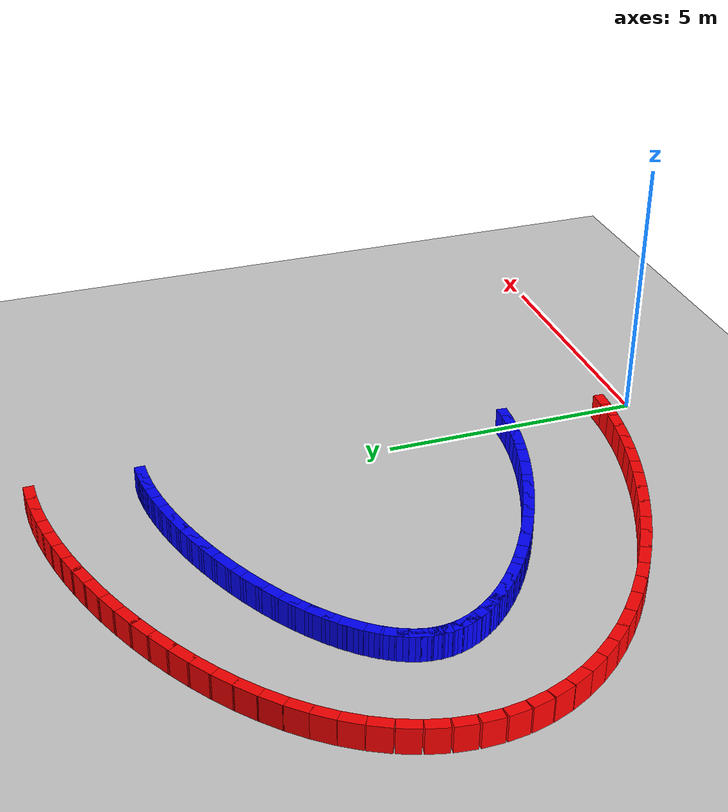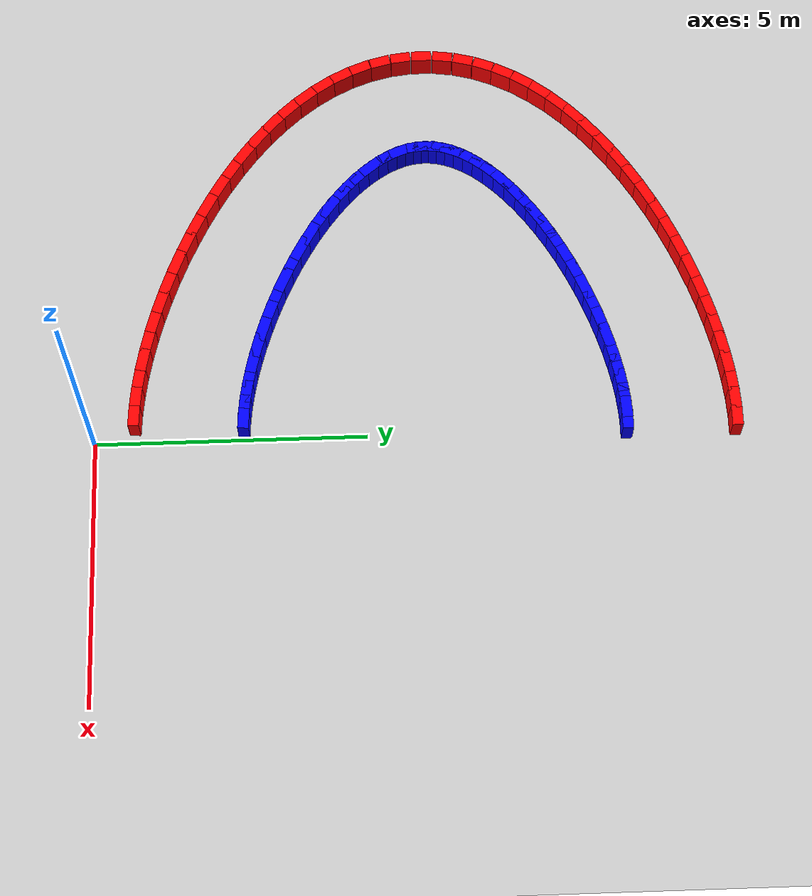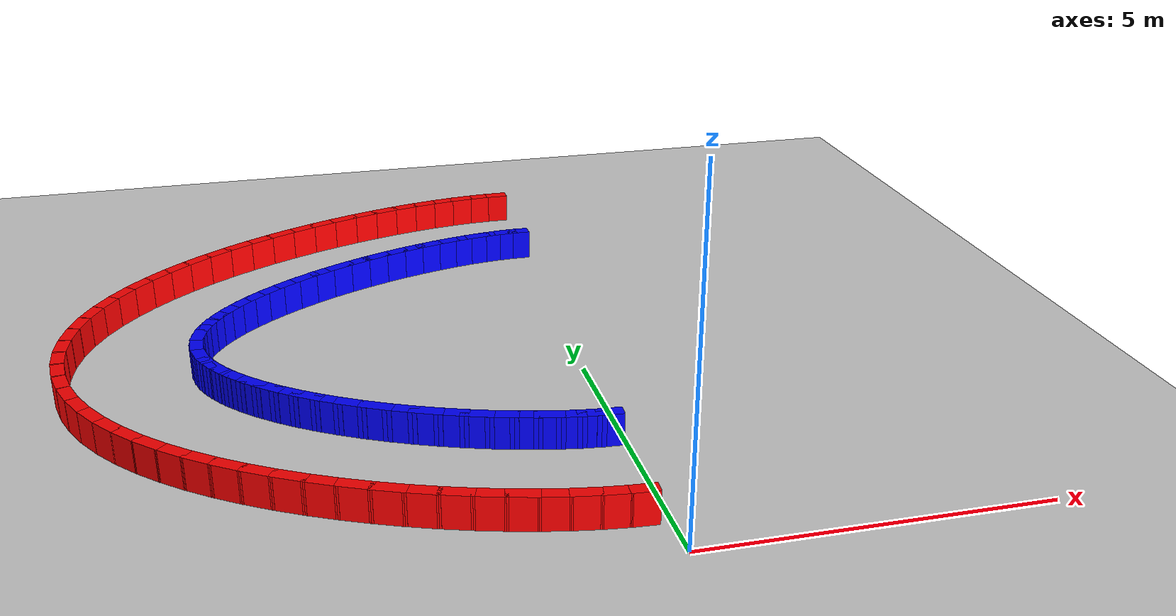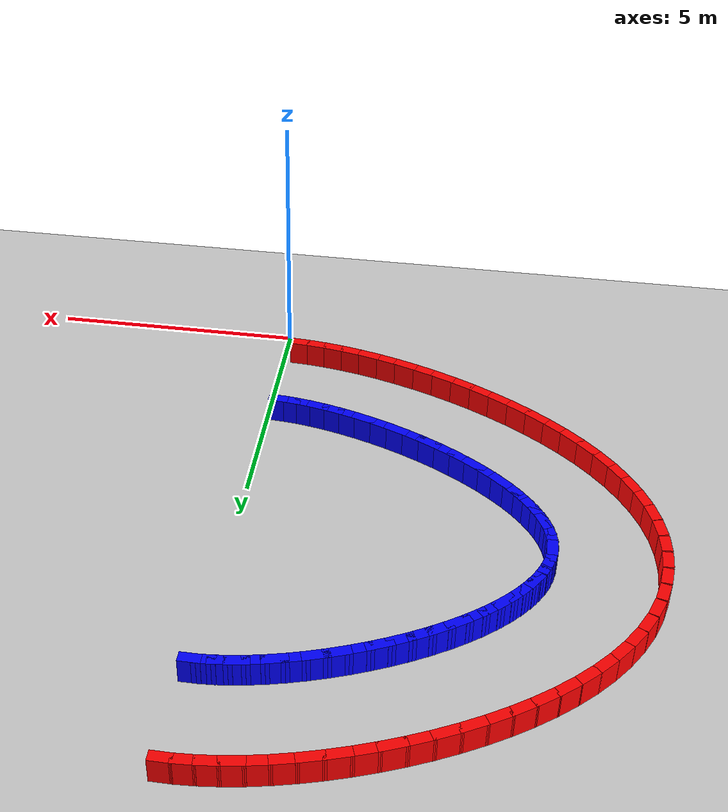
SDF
<sdf version="1.9">
 <world name="kidney_track">
  <model name="ground_plane">
   <static>true</static>
   <link name="link">
    <collision name="collision">
     <geometry><plane><normal>0 0 1</normal><size>100 100</size></plane></geometry>
    </collision>
    <visual name="visual">
     <geometry><plane><normal>0 0 1</normal><size>100 100</size></plane></geometry>
     <material><ambient>0.8 0.8 0.8 1</ambient><diffuse>0.8 0.8 0.8 1</diffuse></material>
    </visual>
   </link>
  </model>
  <model name="track">
   <static>true</static>
   <link name="outer_25">
    <pose>0.0000 11.7500 0.25 0 0 3.1416</pose>
    <collision name="col"><geometry><box><size>0.3916 0.2 0.5</size></box></geometry></collision>
    <visual name="vis">
     <geometry><box><size>0.3916 0.2 0.5</size></box></geometry>
     <material><ambient>1 0 0 1</ambient></material>
    </visual>
   </link>
   <link name="inner_25">
    <pose>0.0000 9.7500 0.25 0 0 3.1416</pose>
    <collision name="col"><geometry><box><size>0.3916 0.2 0.5</size></box></geometry></collision>
    <visual name="vis">
     <geometry><box><size>0.3916 0.2 0.5</size></box></geometry>
     <material><ambient>0 0 1 1</ambient></material>
    </visual>
   </link>
   <link name="outer_26">
    <pose>-0.3505 11.7394 0.25 0 0 -3.0825</pose>
    <collision name="col"><geometry><box><size>0.4091 0.2 0.5</size></box></geometry></collision>
    <visual name="vis">
     <geometry><box><size>0.4091 0.2 0.5</size></box></geometry>
     <material><ambient>1 0 0 1</ambient></material>
    </visual>
   </link>
   <link name="inner_26">
    <pose>-0.2323 9.7429 0.25 0 0 -3.0825</pose>
    <collision name="col"><geometry><box><size>0.4091 0.2 0.5</size></box></geometry></collision>
    <visual name="vis">
     <geometry><box><size>0.4091 0.2 0.5</size></box></geometry>
     <material><ambient>0 0 1 1</ambient></material>
    </visual>
   </link>
   <link name="outer_27">
    <pose>-0.7109 11.7083 0.25 0 0 -3.0298</pose>
    <collision name="col"><geometry><box><size>0.4259 0.2 0.5</size></box></geometry></collision>
    <visual name="vis">
     <geometry><box><size>0.4259 0.2 0.5</size></box></geometry>
     <material><ambient>1 0 0 1</ambient></material>
    </visual>
   </link>
   <link name="inner_27">
    <pose>-0.4878 9.7208 0.25 0 0 -3.0298</pose>
    <collision name="col"><geometry><box><size>0.4259 0.2 0.5</size></box></geometry></collision>
    <visual name="vis">
     <geometry><box><size>0.4259 0.2 0.5</size></box></geometry>
     <material><ambient>0 0 1 1</ambient></material>
    </visual>
   </link>
   <link name="outer_28">
    <pose>-1.0808 11.6576 0.25 0 0 -2.9823</pose>
    <collision name="col"><geometry><box><size>0.4417 0.2 0.5</size></box></geometry></collision>
    <visual name="vis">
     <geometry><box><size>0.4417 0.2 0.5</size></box></geometry>
     <material><ambient>1 0 0 1</ambient></material>
    </visual>
   </link>
   <link name="inner_28">
    <pose>-0.7636 9.6830 0.25 0 0 -2.9823</pose>
    <collision name="col"><geometry><box><size>0.4417 0.2 0.5</size></box></geometry></collision>
    <visual name="vis">
     <geometry><box><size>0.4417 0.2 0.5</size></box></geometry>
     <material><ambient>0 0 1 1</ambient></material>
    </visual>
   </link>
   <link name="outer_29">
    <pose>-1.4597 11.5881 0.25 0 0 -2.9388</pose>
    <collision name="col"><geometry><box><size>0.4560 0.2 0.5</size></box></geometry></collision>
    <visual name="vis">
     <geometry><box><size>0.4560 0.2 0.5</size></box></geometry>
     <material><ambient>1 0 0 1</ambient></material>
    </visual>
   </link>
   <link name="inner_29">
    <pose>-1.0569 9.6291 0.25 0 0 -2.9388</pose>
    <collision name="col"><geometry><box><size>0.4560 0.2 0.5</size></box></geometry></collision>
    <visual name="vis">
     <geometry><box><size>0.4560 0.2 0.5</size></box></geometry>
     <material><ambient>0 0 1 1</ambient></material>
    </visual>
   </link>
   <link name="outer_30">
    <pose>-1.8463 11.5003 0.25 0 0 -2.8983</pose>
    <collision name="col"><geometry><box><size>0.4687 0.2 0.5</size></box></geometry></collision>
    <visual name="vis">
     <geometry><box><size>0.4687 0.2 0.5</size></box></geometry>
     <material><ambient>1 0 0 1</ambient></material>
    </visual>
   </link>
   <link name="inner_30">
    <pose>-1.3645 9.5592 0.25 0 0 -2.8983</pose>
    <collision name="col"><geometry><box><size>0.4687 0.2 0.5</size></box></geometry></collision>
    <visual name="vis">
     <geometry><box><size>0.4687 0.2 0.5</size></box></geometry>
     <material><ambient>0 0 1 1</ambient></material>
    </visual>
   </link>
   <link name="outer_31">
    <pose>-2.2395 11.3946 0.25 0 0 -2.8599</pose>
    <collision name="col"><geometry><box><size>0.4794 0.2 0.5</size></box></geometry></collision>
    <visual name="vis">
     <geometry><box><size>0.4794 0.2 0.5</size></box></geometry>
     <material><ambient>1 0 0 1</ambient></material>
    </visual>
   </link>
   <link name="inner_31">
    <pose>-1.6835 9.4734 0.25 0 0 -2.8599</pose>
    <collision name="col"><geometry><box><size>0.4794 0.2 0.5</size></box></geometry></collision>
    <visual name="vis">
     <geometry><box><size>0.4794 0.2 0.5</size></box></geometry>
     <material><ambient>0 0 1 1</ambient></material>
    </visual>
   </link>
   <link name="outer_32">
    <pose>-2.6373 11.2713 0.25 0 0 -2.8228</pose>
    <collision name="col"><geometry><box><size>0.4880 0.2 0.5</size></box></geometry></collision>
    <visual name="vis">
     <geometry><box><size>0.4880 0.2 0.5</size></box></geometry>
     <material><ambient>1 0 0 1</ambient></material>
    </visual>
   </link>
   <link name="inner_32">
    <pose>-2.0105 9.3721 0.25 0 0 -2.8228</pose>
    <collision name="col"><geometry><box><size>0.4880 0.2 0.5</size></box></geometry></collision>
    <visual name="vis">
     <geometry><box><size>0.4880 0.2 0.5</size></box></geometry>
     <material><ambient>0 0 1 1</ambient></material>
    </visual>
   </link>
   <link name="outer_33">
    <pose>-3.0379 11.1309 0.25 0 0 -2.7863</pose>
    <collision name="col"><geometry><box><size>0.4943 0.2 0.5</size></box></geometry></collision>
    <visual name="vis">
     <geometry><box><size>0.4943 0.2 0.5</size></box></geometry>
     <material><ambient>1 0 0 1</ambient></material>
    </visual>
   </link>
   <link name="inner_33">
    <pose>-2.3422 9.2558 0.25 0 0 -2.7863</pose>
    <collision name="col"><geometry><box><size>0.4943 0.2 0.5</size></box></geometry></collision>
    <visual name="vis">
     <geometry><box><size>0.4943 0.2 0.5</size></box></geometry>
     <material><ambient>0 0 1 1</ambient></material>
    </visual>
   </link>
   <link name="outer_34">
    <pose>-3.4391 10.9737 0.25 0 0 -2.7497</pose>
    <collision name="col"><geometry><box><size>0.4982 0.2 0.5</size></box></geometry></collision>
    <visual name="vis">
     <geometry><box><size>0.4982 0.2 0.5</size></box></geometry>
     <material><ambient>1 0 0 1</ambient></material>
    </visual>
   </link>
   <link name="inner_34">
    <pose>-2.6753 9.1253 0.25 0 0 -2.7497</pose>
    <collision name="col"><geometry><box><size>0.4982 0.2 0.5</size></box></geometry></collision>
    <visual name="vis">
     <geometry><box><size>0.4982 0.2 0.5</size></box></geometry>
     <material><ambient>0 0 1 1</ambient></material>
    </visual>
   </link>
   <link name="outer_35">
    <pose>-3.8385 10.7999 0.25 0 0 -2.7124</pose>
    <collision name="col"><geometry><box><size>0.4997 0.2 0.5</size></box></geometry></collision>
    <visual name="vis">
     <geometry><box><size>0.4997 0.2 0.5</size></box></geometry>
     <material><ambient>1 0 0 1</ambient></material>
    </visual>
   </link>
   <link name="inner_35">
    <pose>-3.0063 8.9813 0.25 0 0 -2.7124</pose>
    <collision name="col"><geometry><box><size>0.4997 0.2 0.5</size></box></geometry></collision>
    <visual name="vis">
     <geometry><box><size>0.4997 0.2 0.5</size></box></geometry>
     <material><ambient>0 0 1 1</ambient></material>
    </visual>
   </link>
   <link name="outer_36">
    <pose>-4.2336 10.6099 0.25 0 0 -2.6738</pose>
    <collision name="col"><geometry><box><size>0.4988 0.2 0.5</size></box></geometry></collision>
    <visual name="vis">
     <geometry><box><size>0.4988 0.2 0.5</size></box></geometry>
     <material><ambient>1 0 0 1</ambient></material>
    </visual>
   </link>
   <link name="inner_36">
    <pose>-3.3317 8.8248 0.25 0 0 -2.6738</pose>
    <collision name="col"><geometry><box><size>0.4988 0.2 0.5</size></box></geometry></collision>
    <visual name="vis">
     <geometry><box><size>0.4988 0.2 0.5</size></box></geometry>
     <material><ambient>0 0 1 1</ambient></material>
    </visual>
   </link>
   <link name="outer_37">
    <pose>-4.6217 10.4038 0.25 0 0 -2.6330</pose>
    <collision name="col"><geometry><box><size>0.4954 0.2 0.5</size></box></geometry></collision>
    <visual name="vis">
     <geometry><box><size>0.4954 0.2 0.5</size></box></geometry>
     <material><ambient>1 0 0 1</ambient></material>
    </visual>
   </link>
   <link name="inner_37">
    <pose>-3.6479 8.6569 0.25 0 0 -2.6330</pose>
    <collision name="col"><geometry><box><size>0.4954 0.2 0.5</size></box></geometry></collision>
    <visual name="vis">
     <geometry><box><size>0.4954 0.2 0.5</size></box></geometry>
     <material><ambient>0 0 1 1</ambient></material>
    </visual>
   </link>
   <link name="outer_38">
    <pose>-5.0004 10.1819 0.25 0 0 -2.5895</pose>
    <collision name="col"><geometry><box><size>0.4898 0.2 0.5</size></box></geometry></collision>
    <visual name="vis">
     <geometry><box><size>0.4898 0.2 0.5</size></box></geometry>
     <material><ambient>1 0 0 1</ambient></material>
    </visual>
   </link>
   <link name="inner_38">
    <pose>-3.9516 8.4790 0.25 0 0 -2.5895</pose>
    <collision name="col"><geometry><box><size>0.4898 0.2 0.5</size></box></geometry></collision>
    <visual name="vis">
     <geometry><box><size>0.4898 0.2 0.5</size></box></geometry>
     <material><ambient>0 0 1 1</ambient></material>
    </visual>
   </link>
   <link name="outer_39">
    <pose>-5.3670 9.9443 0.25 0 0 -2.5425</pose>
    <collision name="col"><geometry><box><size>0.4822 0.2 0.5</size></box></geometry></collision>
    <visual name="vis">
     <geometry><box><size>0.4822 0.2 0.5</size></box></geometry>
     <material><ambient>1 0 0 1</ambient></material>
    </visual>
   </link>
   <link name="inner_39">
    <pose>-4.2393 8.2925 0.25 0 0 -2.5425</pose>
    <collision name="col"><geometry><box><size>0.4822 0.2 0.5</size></box></geometry></collision>
    <visual name="vis">
     <geometry><box><size>0.4822 0.2 0.5</size></box></geometry>
     <material><ambient>0 0 1 1</ambient></material>
    </visual>
   </link>
   <link name="outer_40">
    <pose>-5.7187 9.6909 0.25 0 0 -2.4912</pose>
    <collision name="col"><geometry><box><size>0.4727 0.2 0.5</size></box></geometry></collision>
    <visual name="vis">
     <geometry><box><size>0.4727 0.2 0.5</size></box></geometry>
     <material><ambient>1 0 0 1</ambient></material>
    </visual>
   </link>
   <link name="inner_40">
    <pose>-4.5077 8.0992 0.25 0 0 -2.4912</pose>
    <collision name="col"><geometry><box><size>0.4727 0.2 0.5</size></box></geometry></collision>
    <visual name="vis">
     <geometry><box><size>0.4727 0.2 0.5</size></box></geometry>
     <material><ambient>0 0 1 1</ambient></material>
    </visual>
   </link>
   <link name="outer_41">
    <pose>-6.0531 9.4215 0.25 0 0 -2.4346</pose>
    <collision name="col"><geometry><box><size>0.4618 0.2 0.5</size></box></geometry></collision>
    <visual name="vis">
     <geometry><box><size>0.4618 0.2 0.5</size></box></geometry>
     <material><ambient>1 0 0 1</ambient></material>
    </visual>
   </link>
   <link name="inner_41">
    <pose>-4.7539 7.9009 0.25 0 0 -2.4346</pose>
    <collision name="col"><geometry><box><size>0.4618 0.2 0.5</size></box></geometry></collision>
    <visual name="vis">
     <geometry><box><size>0.4618 0.2 0.5</size></box></geometry>
     <material><ambient>0 0 1 1</ambient></material>
    </visual>
   </link>
   <link name="outer_42">
    <pose>-6.3672 9.1359 0.25 0 0 -2.3717</pose>
    <collision name="col"><geometry><box><size>0.4497 0.2 0.5</size></box></geometry></collision>
    <visual name="vis">
     <geometry><box><size>0.4497 0.2 0.5</size></box></geometry>
     <material><ambient>1 0 0 1</ambient></material>
    </visual>
   </link>
   <link name="inner_42">
    <pose>-4.9751 7.6999 0.25 0 0 -2.3717</pose>
    <collision name="col"><geometry><box><size>0.4497 0.2 0.5</size></box></geometry></collision>
    <visual name="vis">
     <geometry><box><size>0.4497 0.2 0.5</size></box></geometry>
     <material><ambient>0 0 1 1</ambient></material>
    </visual>
   </link>
   <link name="outer_43">
    <pose>-6.6585 8.8335 0.25 0 0 -2.3016</pose>
    <collision name="col"><geometry><box><size>0.4371 0.2 0.5</size></box></geometry></collision>
    <visual name="vis">
     <geometry><box><size>0.4371 0.2 0.5</size></box></geometry>
     <material><ambient>1 0 0 1</ambient></material>
    </visual>
   </link>
   <link name="inner_43">
    <pose>-5.1692 7.4986 0.25 0 0 -2.3016</pose>
    <collision name="col"><geometry><box><size>0.4371 0.2 0.5</size></box></geometry></collision>
    <visual name="vis">
     <geometry><box><size>0.4371 0.2 0.5</size></box></geometry>
     <material><ambient>0 0 1 1</ambient></material>
    </visual>
   </link>
   <link name="outer_44">
    <pose>-6.9237 8.5137 0.25 0 0 -2.2232</pose>
    <collision name="col"><geometry><box><size>0.4245 0.2 0.5</size></box></geometry></collision>
    <visual name="vis">
     <geometry><box><size>0.4245 0.2 0.5</size></box></geometry>
     <material><ambient>1 0 0 1</ambient></material>
    </visual>
   </link>
   <link name="inner_44">
    <pose>-5.3345 7.2994 0.25 0 0 -2.2232</pose>
    <collision name="col"><geometry><box><size>0.4245 0.2 0.5</size></box></geometry></collision>
    <visual name="vis">
     <geometry><box><size>0.4245 0.2 0.5</size></box></geometry>
     <material><ambient>0 0 1 1</ambient></material>
    </visual>
   </link>
   <link name="outer_45">
    <pose>-7.1595 8.1760 0.25 0 0 -2.1358</pose>
    <collision name="col"><geometry><box><size>0.4124 0.2 0.5</size></box></geometry></collision>
    <visual name="vis">
     <geometry><box><size>0.4124 0.2 0.5</size></box></geometry>
     <material><ambient>1 0 0 1</ambient></material>
    </visual>
   </link>
   <link name="inner_45">
    <pose>-5.4703 7.1052 0.25 0 0 -2.1358</pose>
    <collision name="col"><geometry><box><size>0.4124 0.2 0.5</size></box></geometry></collision>
    <visual name="vis">
     <geometry><box><size>0.4124 0.2 0.5</size></box></geometry>
     <material><ambient>0 0 1 1</ambient></material>
    </visual>
   </link>
   <link name="outer_46">
    <pose>-7.3619 7.8202 0.25 0 0 -2.0388</pose>
    <collision name="col"><geometry><box><size>0.4016 0.2 0.5</size></box></geometry></collision>
    <visual name="vis">
     <geometry><box><size>0.4016 0.2 0.5</size></box></geometry>
     <material><ambient>1 0 0 1</ambient></material>
    </visual>
   </link>
   <link name="inner_46">
    <pose>-5.5770 6.9180 0.25 0 0 -2.0388</pose>
    <collision name="col"><geometry><box><size>0.4016 0.2 0.5</size></box></geometry></collision>
    <visual name="vis">
     <geometry><box><size>0.4016 0.2 0.5</size></box></geometry>
     <material><ambient>0 0 1 1</ambient></material>
    </visual>
   </link>
   <link name="outer_47">
    <pose>-7.5267 7.4469 0.25 0 0 -1.9323</pose>
    <collision name="col"><geometry><box><size>0.3927 0.2 0.5</size></box></geometry></collision>
    <visual name="vis">
     <geometry><box><size>0.3927 0.2 0.5</size></box></geometry>
     <material><ambient>1 0 0 1</ambient></material>
    </visual>
   </link>
   <link name="inner_47">
    <pose>-5.6559 6.7395 0.25 0 0 -1.9323</pose>
    <collision name="col"><geometry><box><size>0.3927 0.2 0.5</size></box></geometry></collision>
    <visual name="vis">
     <geometry><box><size>0.3927 0.2 0.5</size></box></geometry>
     <material><ambient>0 0 1 1</ambient></material>
    </visual>
   </link>
   <link name="outer_48">
    <pose>-7.6489 7.0580 0.25 0 0 -1.8173</pose>
    <collision name="col"><geometry><box><size>0.3864 0.2 0.5</size></box></geometry></collision>
    <visual name="vis">
     <geometry><box><size>0.3864 0.2 0.5</size></box></geometry>
     <material><ambient>1 0 0 1</ambient></material>
    </visual>
   </link>
   <link name="inner_48">
    <pose>-5.7094 6.5700 0.25 0 0 -1.8173</pose>
    <collision name="col"><geometry><box><size>0.3864 0.2 0.5</size></box></geometry></collision>
    <visual name="vis">
     <geometry><box><size>0.3864 0.2 0.5</size></box></geometry>
     <material><ambient>0 0 1 1</ambient></material>
    </visual>
   </link>
   <link name="outer_49">
    <pose>-7.7244 6.6573 0.25 0 0 -1.6958</pose>
    <collision name="col"><geometry><box><size>0.3831 0.2 0.5</size></box></geometry></collision>
    <visual name="vis">
     <geometry><box><size>0.3831 0.2 0.5</size></box></geometry>
     <material><ambient>1 0 0 1</ambient></material>
    </visual>
   </link>
   <link name="inner_49">
    <pose>-5.7401 6.4078 0.25 0 0 -1.6958</pose>
    <collision name="col"><geometry><box><size>0.3831 0.2 0.5</size></box></geometry></collision>
    <visual name="vis">
     <geometry><box><size>0.3831 0.2 0.5</size></box></geometry>
     <material><ambient>0 0 1 1</ambient></material>
    </visual>
   </link>
   <link name="outer_50">
    <pose>-7.7500 6.2500 0.25 0 0 -1.5708</pose>
    <collision name="col"><geometry><box><size>0.3831 0.2 0.5</size></box></geometry></collision>
    <visual name="vis">
     <geometry><box><size>0.3831 0.2 0.5</size></box></geometry>
     <material><ambient>1 0 0 1</ambient></material>
    </visual>
   </link>
   <link name="inner_50">
    <pose>-5.7500 6.2500 0.25 0 0 -1.5708</pose>
    <collision name="col"><geometry><box><size>0.3831 0.2 0.5</size></box></geometry></collision>
    <visual name="vis">
     <geometry><box><size>0.3831 0.2 0.5</size></box></geometry>
     <material><ambient>0 0 1 1</ambient></material>
    </visual>
   </link>
   <link name="outer_51">
    <pose>-7.7244 5.8427 0.25 0 0 -1.4458</pose>
    <collision name="col"><geometry><box><size>0.3864 0.2 0.5</size></box></geometry></collision>
    <visual name="vis">
     <geometry><box><size>0.3864 0.2 0.5</size></box></geometry>
     <material><ambient>1 0 0 1</ambient></material>
    </visual>
   </link>
   <link name="inner_51">
    <pose>-5.7401 6.0922 0.25 0 0 -1.4458</pose>
    <collision name="col"><geometry><box><size>0.3864 0.2 0.5</size></box></geometry></collision>
    <visual name="vis">
     <geometry><box><size>0.3864 0.2 0.5</size></box></geometry>
     <material><ambient>0 0 1 1</ambient></material>
    </visual>
   </link>
   <link name="outer_52">
    <pose>-7.6489 5.4420 0.25 0 0 -1.3243</pose>
    <collision name="col"><geometry><box><size>0.3927 0.2 0.5</size></box></geometry></collision>
    <visual name="vis">
     <geometry><box><size>0.3927 0.2 0.5</size></box></geometry>
     <material><ambient>1 0 0 1</ambient></material>
    </visual>
   </link>
   <link name="inner_52">
    <pose>-5.7094 5.9300 0.25 0 0 -1.3243</pose>
    <collision name="col"><geometry><box><size>0.3927 0.2 0.5</size></box></geometry></collision>
    <visual name="vis">
     <geometry><box><size>0.3927 0.2 0.5</size></box></geometry>
     <material><ambient>0 0 1 1</ambient></material>
    </visual>
   </link>
   <link name="outer_53">
    <pose>-7.5267 5.0531 0.25 0 0 -1.2093</pose>
    <collision name="col"><geometry><box><size>0.4016 0.2 0.5</size></box></geometry></collision>
    <visual name="vis">
     <geometry><box><size>0.4016 0.2 0.5</size></box></geometry>
     <material><ambient>1 0 0 1</ambient></material>
    </visual>
   </link>
   <link name="inner_53">
    <pose>-5.6559 5.7605 0.25 0 0 -1.2093</pose>
    <collision name="col"><geometry><box><size>0.4016 0.2 0.5</size></box></geometry></collision>
    <visual name="vis">
     <geometry><box><size>0.4016 0.2 0.5</size></box></geometry>
     <material><ambient>0 0 1 1</ambient></material>
    </visual>
   </link>
   <link name="outer_54">
    <pose>-7.3619 4.6798 0.25 0 0 -1.1028</pose>
    <collision name="col"><geometry><box><size>0.4124 0.2 0.5</size></box></geometry></collision>
    <visual name="vis">
     <geometry><box><size>0.4124 0.2 0.5</size></box></geometry>
     <material><ambient>1 0 0 1</ambient></material>
    </visual>
   </link>
   <link name="inner_54">
    <pose>-5.5770 5.5820 0.25 0 0 -1.1028</pose>
    <collision name="col"><geometry><box><size>0.4124 0.2 0.5</size></box></geometry></collision>
    <visual name="vis">
     <geometry><box><size>0.4124 0.2 0.5</size></box></geometry>
     <material><ambient>0 0 1 1</ambient></material>
    </visual>
   </link>
   <link name="outer_55">
    <pose>-7.1595 4.3240 0.25 0 0 -1.0058</pose>
    <collision name="col"><geometry><box><size>0.4245 0.2 0.5</size></box></geometry></collision>
    <visual name="vis">
     <geometry><box><size>0.4245 0.2 0.5</size></box></geometry>
     <material><ambient>1 0 0 1</ambient></material>
    </visual>
   </link>
   <link name="inner_55">
    <pose>-5.4703 5.3948 0.25 0 0 -1.0058</pose>
    <collision name="col"><geometry><box><size>0.4245 0.2 0.5</size></box></geometry></collision>
    <visual name="vis">
     <geometry><box><size>0.4245 0.2 0.5</size></box></geometry>
     <material><ambient>0 0 1 1</ambient></material>
    </visual>
   </link>
   <link name="outer_56">
    <pose>-6.9237 3.9863 0.25 0 0 -0.9184</pose>
    <collision name="col"><geometry><box><size>0.4371 0.2 0.5</size></box></geometry></collision>
    <visual name="vis">
     <geometry><box><size>0.4371 0.2 0.5</size></box></geometry>
     <material><ambient>1 0 0 1</ambient></material>
    </visual>
   </link>
   <link name="inner_56">
    <pose>-5.3345 5.2006 0.25 0 0 -0.9184</pose>
    <collision name="col"><geometry><box><size>0.4371 0.2 0.5</size></box></geometry></collision>
    <visual name="vis">
     <geometry><box><size>0.4371 0.2 0.5</size></box></geometry>
     <material><ambient>0 0 1 1</ambient></material>
    </visual>
   </link>
   <link name="outer_57">
    <pose>-6.6585 3.6665 0.25 0 0 -0.8400</pose>
    <collision name="col"><geometry><box><size>0.4497 0.2 0.5</size></box></geometry></collision>
    <visual name="vis">
     <geometry><box><size>0.4497 0.2 0.5</size></box></geometry>
     <material><ambient>1 0 0 1</ambient></material>
    </visual>
   </link>
   <link name="inner_57">
    <pose>-5.1692 5.0014 0.25 0 0 -0.8400</pose>
    <collision name="col"><geometry><box><size>0.4497 0.2 0.5</size></box></geometry></collision>
    <visual name="vis">
     <geometry><box><size>0.4497 0.2 0.5</size></box></geometry>
     <material><ambient>0 0 1 1</ambient></material>
    </visual>
   </link>
   <link name="outer_58">
    <pose>-6.3672 3.3641 0.25 0 0 -0.7699</pose>
    <collision name="col"><geometry><box><size>0.4618 0.2 0.5</size></box></geometry></collision>
    <visual name="vis">
     <geometry><box><size>0.4618 0.2 0.5</size></box></geometry>
     <material><ambient>1 0 0 1</ambient></material>
    </visual>
   </link>
   <link name="inner_58">
    <pose>-4.9751 4.8001 0.25 0 0 -0.7699</pose>
    <collision name="col"><geometry><box><size>0.4618 0.2 0.5</size></box></geometry></collision>
    <visual name="vis">
     <geometry><box><size>0.4618 0.2 0.5</size></box></geometry>
     <material><ambient>0 0 1 1</ambient></material>
    </visual>
   </link>
   <link name="outer_59">
    <pose>-6.0531 3.0785 0.25 0 0 -0.7070</pose>
    <collision name="col"><geometry><box><size>0.4727 0.2 0.5</size></box></geometry></collision>
    <visual name="vis">
     <geometry><box><size>0.4727 0.2 0.5</size></box></geometry>
     <material><ambient>1 0 0 1</ambient></material>
    </visual>
   </link>
   <link name="inner_59">
    <pose>-4.7539 4.5991 0.25 0 0 -0.7070</pose>
    <collision name="col"><geometry><box><size>0.4727 0.2 0.5</size></box></geometry></collision>
    <visual name="vis">
     <geometry><box><size>0.4727 0.2 0.5</size></box></geometry>
     <material><ambient>0 0 1 1</ambient></material>
    </visual>
   </link>
   <link name="outer_60">
    <pose>-5.7187 2.8091 0.25 0 0 -0.6504</pose>
    <collision name="col"><geometry><box><size>0.4822 0.2 0.5</size></box></geometry></collision>
    <visual name="vis">
     <geometry><box><size>0.4822 0.2 0.5</size></box></geometry>
     <material><ambient>1 0 0 1</ambient></material>
    </visual>
   </link>
   <link name="inner_60">
    <pose>-4.5077 4.4008 0.25 0 0 -0.6504</pose>
    <collision name="col"><geometry><box><size>0.4822 0.2 0.5</size></box></geometry></collision>
    <visual name="vis">
     <geometry><box><size>0.4822 0.2 0.5</size></box></geometry>
     <material><ambient>0 0 1 1</ambient></material>
    </visual>
   </link>
   <link name="outer_61">
    <pose>-5.3670 2.5557 0.25 0 0 -0.5991</pose>
    <collision name="col"><geometry><box><size>0.4898 0.2 0.5</size></box></geometry></collision>
    <visual name="vis">
     <geometry><box><size>0.4898 0.2 0.5</size></box></geometry>
     <material><ambient>1 0 0 1</ambient></material>
    </visual>
   </link>
   <link name="inner_61">
    <pose>-4.2393 4.2075 0.25 0 0 -0.5991</pose>
    <collision name="col"><geometry><box><size>0.4898 0.2 0.5</size></box></geometry></collision>
    <visual name="vis">
     <geometry><box><size>0.4898 0.2 0.5</size></box></geometry>
     <material><ambient>0 0 1 1</ambient></material>
    </visual>
   </link>
   <link name="outer_62">
    <pose>-5.0004 2.3181 0.25 0 0 -0.5520</pose>
    <collision name="col"><geometry><box><size>0.4954 0.2 0.5</size></box></geometry></collision>
    <visual name="vis">
     <geometry><box><size>0.4954 0.2 0.5</size></box></geometry>
     <material><ambient>1 0 0 1</ambient></material>
    </visual>
   </link>
   <link name="inner_62">
    <pose>-3.9516 4.0210 0.25 0 0 -0.5520</pose>
    <collision name="col"><geometry><box><size>0.4954 0.2 0.5</size></box></geometry></collision>
    <visual name="vis">
     <geometry><box><size>0.4954 0.2 0.5</size></box></geometry>
     <material><ambient>0 0 1 1</ambient></material>
    </visual>
   </link>
   <link name="outer_63">
    <pose>-4.6217 2.0962 0.25 0 0 -0.5086</pose>
    <collision name="col"><geometry><box><size>0.4988 0.2 0.5</size></box></geometry></collision>
    <visual name="vis">
     <geometry><box><size>0.4988 0.2 0.5</size></box></geometry>
     <material><ambient>1 0 0 1</ambient></material>
    </visual>
   </link>
   <link name="inner_63">
    <pose>-3.6479 3.8431 0.25 0 0 -0.5086</pose>
    <collision name="col"><geometry><box><size>0.4988 0.2 0.5</size></box></geometry></collision>
    <visual name="vis">
     <geometry><box><size>0.4988 0.2 0.5</size></box></geometry>
     <material><ambient>0 0 1 1</ambient></material>
    </visual>
   </link>
   <link name="outer_64">
    <pose>-4.2336 1.8901 0.25 0 0 -0.4678</pose>
    <collision name="col"><geometry><box><size>0.4997 0.2 0.5</size></box></geometry></collision>
    <visual name="vis">
     <geometry><box><size>0.4997 0.2 0.5</size></box></geometry>
     <material><ambient>1 0 0 1</ambient></material>
    </visual>
   </link>
   <link name="inner_64">
    <pose>-3.3317 3.6752 0.25 0 0 -0.4678</pose>
    <collision name="col"><geometry><box><size>0.4997 0.2 0.5</size></box></geometry></collision>
    <visual name="vis">
     <geometry><box><size>0.4997 0.2 0.5</size></box></geometry>
     <material><ambient>0 0 1 1</ambient></material>
    </visual>
   </link>
   <link name="outer_65">
    <pose>-3.8385 1.7001 0.25 0 0 -0.4291</pose>
    <collision name="col"><geometry><box><size>0.4982 0.2 0.5</size></box></geometry></collision>
    <visual name="vis">
     <geometry><box><size>0.4982 0.2 0.5</size></box></geometry>
     <material><ambient>1 0 0 1</ambient></material>
    </visual>
   </link>
   <link name="inner_65">
    <pose>-3.0063 3.5187 0.25 0 0 -0.4291</pose>
    <collision name="col"><geometry><box><size>0.4982 0.2 0.5</size></box></geometry></collision>
    <visual name="vis">
     <geometry><box><size>0.4982 0.2 0.5</size></box></geometry>
     <material><ambient>0 0 1 1</ambient></material>
    </visual>
   </link>
   <link name="outer_66">
    <pose>-3.4391 1.5263 0.25 0 0 -0.3918</pose>
    <collision name="col"><geometry><box><size>0.4943 0.2 0.5</size></box></geometry></collision>
    <visual name="vis">
     <geometry><box><size>0.4943 0.2 0.5</size></box></geometry>
     <material><ambient>1 0 0 1</ambient></material>
    </visual>
   </link>
   <link name="inner_66">
    <pose>-2.6753 3.3747 0.25 0 0 -0.3918</pose>
    <collision name="col"><geometry><box><size>0.4943 0.2 0.5</size></box></geometry></collision>
    <visual name="vis">
     <geometry><box><size>0.4943 0.2 0.5</size></box></geometry>
     <material><ambient>0 0 1 1</ambient></material>
    </visual>
   </link>
   <link name="outer_67">
    <pose>-3.0379 1.3691 0.25 0 0 -0.3553</pose>
    <collision name="col"><geometry><box><size>0.4880 0.2 0.5</size></box></geometry></collision>
    <visual name="vis">
     <geometry><box><size>0.4880 0.2 0.5</size></box></geometry>
     <material><ambient>1 0 0 1</ambient></material>
    </visual>
   </link>
   <link name="inner_67">
    <pose>-2.3422 3.2442 0.25 0 0 -0.3553</pose>
    <collision name="col"><geometry><box><size>0.4880 0.2 0.5</size></box></geometry></collision>
    <visual name="vis">
     <geometry><box><size>0.4880 0.2 0.5</size></box></geometry>
     <material><ambient>0 0 1 1</ambient></material>
    </visual>
   </link>
   <link name="outer_68">
    <pose>-2.6373 1.2287 0.25 0 0 -0.3188</pose>
    <collision name="col"><geometry><box><size>0.4794 0.2 0.5</size></box></geometry></collision>
    <visual name="vis">
     <geometry><box><size>0.4794 0.2 0.5</size></box></geometry>
     <material><ambient>1 0 0 1</ambient></material>
    </visual>
   </link>
   <link name="inner_68">
    <pose>-2.0105 3.1279 0.25 0 0 -0.3188</pose>
    <collision name="col"><geometry><box><size>0.4794 0.2 0.5</size></box></geometry></collision>
    <visual name="vis">
     <geometry><box><size>0.4794 0.2 0.5</size></box></geometry>
     <material><ambient>0 0 1 1</ambient></material>
    </visual>
   </link>
   <link name="outer_69">
    <pose>-2.2395 1.1054 0.25 0 0 -0.2817</pose>
    <collision name="col"><geometry><box><size>0.4687 0.2 0.5</size></box></geometry></collision>
    <visual name="vis">
     <geometry><box><size>0.4687 0.2 0.5</size></box></geometry>
     <material><ambient>1 0 0 1</ambient></material>
    </visual>
   </link>
   <link name="inner_69">
    <pose>-1.6835 3.0266 0.25 0 0 -0.2817</pose>
    <collision name="col"><geometry><box><size>0.4687 0.2 0.5</size></box></geometry></collision>
    <visual name="vis">
     <geometry><box><size>0.4687 0.2 0.5</size></box></geometry>
     <material><ambient>0 0 1 1</ambient></material>
    </visual>
   </link>
   <link name="outer_70">
    <pose>-1.8463 0.9997 0.25 0 0 -0.2433</pose>
    <collision name="col"><geometry><box><size>0.4560 0.2 0.5</size></box></geometry></collision>
    <visual name="vis">
     <geometry><box><size>0.4560 0.2 0.5</size></box></geometry>
     <material><ambient>1 0 0 1</ambient></material>
    </visual>
   </link>
   <link name="inner_70">
    <pose>-1.3645 2.9408 0.25 0 0 -0.2433</pose>
    <collision name="col"><geometry><box><size>0.4560 0.2 0.5</size></box></geometry></collision>
    <visual name="vis">
     <geometry><box><size>0.4560 0.2 0.5</size></box></geometry>
     <material><ambient>0 0 1 1</ambient></material>
    </visual>
   </link>
   <link name="outer_71">
    <pose>-1.4597 0.9119 0.25 0 0 -0.2028</pose>
    <collision name="col"><geometry><box><size>0.4417 0.2 0.5</size></box></geometry></collision>
    <visual name="vis">
     <geometry><box><size>0.4417 0.2 0.5</size></box></geometry>
     <material><ambient>1 0 0 1</ambient></material>
    </visual>
   </link>
   <link name="inner_71">
    <pose>-1.0569 2.8709 0.25 0 0 -0.2028</pose>
    <collision name="col"><geometry><box><size>0.4417 0.2 0.5</size></box></geometry></collision>
    <visual name="vis">
     <geometry><box><size>0.4417 0.2 0.5</size></box></geometry>
     <material><ambient>0 0 1 1</ambient></material>
    </visual>
   </link>
   <link name="outer_72">
    <pose>-1.0808 0.8424 0.25 0 0 -0.1593</pose>
    <collision name="col"><geometry><box><size>0.4259 0.2 0.5</size></box></geometry></collision>
    <visual name="vis">
     <geometry><box><size>0.4259 0.2 0.5</size></box></geometry>
     <material><ambient>1 0 0 1</ambient></material>
    </visual>
   </link>
   <link name="inner_72">
    <pose>-0.7636 2.8170 0.25 0 0 -0.1593</pose>
    <collision name="col"><geometry><box><size>0.4259 0.2 0.5</size></box></geometry></collision>
    <visual name="vis">
     <geometry><box><size>0.4259 0.2 0.5</size></box></geometry>
     <material><ambient>0 0 1 1</ambient></material>
    </visual>
   </link>
   <link name="outer_73">
    <pose>-0.7109 0.7917 0.25 0 0 -0.1118</pose>
    <collision name="col"><geometry><box><size>0.4091 0.2 0.5</size></box></geometry></collision>
    <visual name="vis">
     <geometry><box><size>0.4091 0.2 0.5</size></box></geometry>
     <material><ambient>1 0 0 1</ambient></material>
    </visual>
   </link>
   <link name="inner_73">
    <pose>-0.4878 2.7792 0.25 0 0 -0.1118</pose>
    <collision name="col"><geometry><box><size>0.4091 0.2 0.5</size></box></geometry></collision>
    <visual name="vis">
     <geometry><box><size>0.4091 0.2 0.5</size></box></geometry>
     <material><ambient>0 0 1 1</ambient></material>
    </visual>
   </link>
   <link name="outer_74">
    <pose>-0.3505 0.7606 0.25 0 0 -0.0591</pose>
    <collision name="col"><geometry><box><size>0.3916 0.2 0.5</size></box></geometry></collision>
    <visual name="vis">
     <geometry><box><size>0.3916 0.2 0.5</size></box></geometry>
     <material><ambient>1 0 0 1</ambient></material>
    </visual>
   </link>
   <link name="inner_74">
    <pose>-0.2323 2.7571 0.25 0 0 -0.0591</pose>
    <collision name="col"><geometry><box><size>0.3916 0.2 0.5</size></box></geometry></collision>
    <visual name="vis">
     <geometry><box><size>0.3916 0.2 0.5</size></box></geometry>
     <material><ambient>0 0 1 1</ambient></material>
    </visual>
   </link>
  </model>
 </world>
</sdf>
